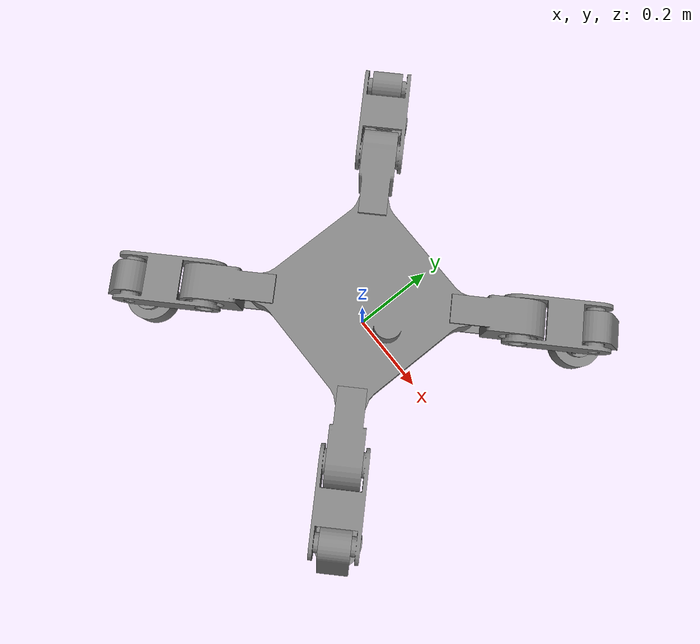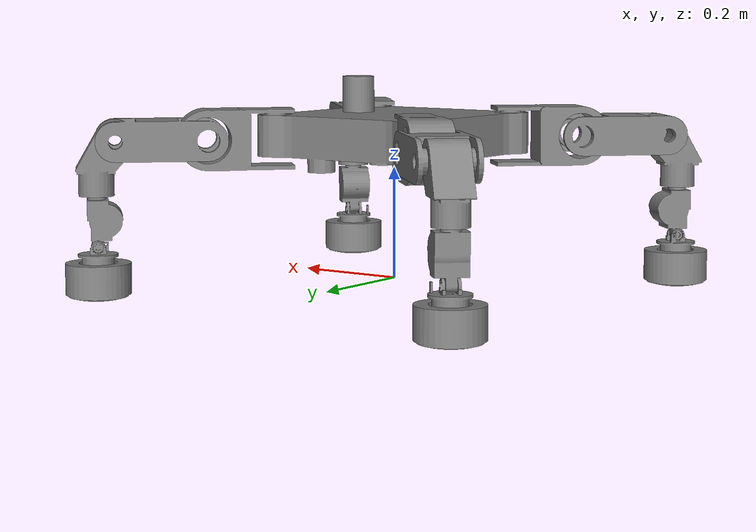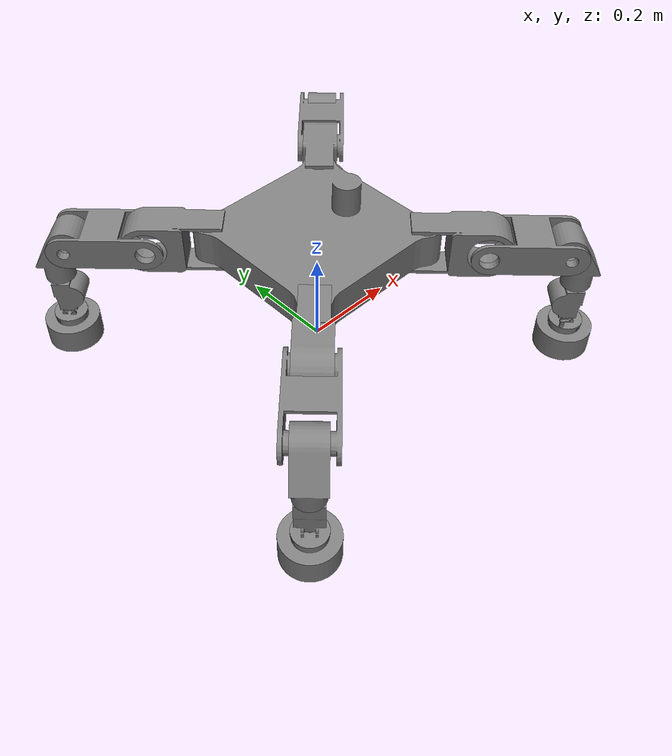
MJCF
<?xml version="1.0"?>
<mujoco model="spider_SLDASM_2m6d">
  <compiler angle="radian" coordinate="local"/>
  <option timestep="0.002" gravity="0 0 -9.81"/>

  <asset>
    <!-- Meshes referenced in URDF -->
    <mesh name="base_link" file="../meshes/base_link.STL"/>
    <mesh name="FR_hip" file="../meshes/FR_hip.STL"/>
    <mesh name="FR_thigh" file="../meshes/FR_thigh.STL"/>
    <mesh name="FR_calf" file="../meshes/FR_calf.STL"/>
    <mesh name="FR_steer" file="../meshes/FR_steer.STL"/>
    <mesh name="FR_trans" file="../meshes/FR_trans.STL"/>
    <mesh name="FR_wheel" file="../meshes/FR_wheel.STL"/>
    <mesh name="FL_hip" file="../meshes/FL_hip.STL"/>
    <mesh name="FL_thigh" file="../meshes/FL_thigh.STL"/>
    <mesh name="FL_calf" file="../meshes/FL_calf.STL"/>
    <mesh name="FL_steer" file="../meshes/FL_steer.STL"/>
    <mesh name="FL_trans" file="../meshes/FL_trans.STL"/>
    <mesh name="FL_wheel" file="../meshes/FL_wheel.STL"/>
    <mesh name="RL_hip" file="../meshes/RL_hip.STL"/>
    <mesh name="RL_thigh" file="../meshes/RL_thigh.STL"/>
    <mesh name="RL_calf" file="../meshes/RL_calf.STL"/>
    <mesh name="RL_steer" file="../meshes/RL_steer.STL"/>
    <mesh name="RL_trans" file="../meshes/RL_trans.STL"/>
    <mesh name="RL_wheel" file="../meshes/RL_wheel.STL"/>
    <mesh name="RR_hip" file="../meshes/RR_hip.STL"/>
    <mesh name="RR_thigh" file="../meshes/RR_thigh.STL"/>
    <mesh name="RR_calf" file="../meshes/RR_calf.STL"/>
    <mesh name="RR_steer" file="../meshes/RR_steer.STL"/>
    <mesh name="RR_trans" file="../meshes/RR_trans.STL"/>
    <mesh name="RR_wheel" file="../meshes/RR_wheel.STL"/>
  </asset>

  <default>
    <joint armature="0" damping="0.1" stiffness="0"/>
    <geom contype="1" conaffinity="1" friction="0.7 .1 .1" density="1000"/>
  </default>

  <worldbody>
  <body name="base_link" pos="0 0 0.26" euler="0 0 0">
    <joint name="root" type="free" />
    <inertial pos="0. 0 0." mass="7.61" diaginertia="0.067729 0.0725 0.12513"/>
    <geom type="mesh" mesh="base_link" name="geom_base_link"/>
    <body name="FR_hip" pos="0.15 -0.15 -0.00525" euler="0 0 -0.7854">
      <inertial pos="0.082474 0 0.000806" mass="1.9015" diaginertia="0.00332 0.0066457 0.004961"/>
      <joint name="FR_hip_joint_rev" type="hinge" axis="0 0 1" range="-1.1345 1.1345"/>
      <geom type="mesh" mesh="FR_hip" name="geom_FR_hip"/>
      <body name="FR_thigh" pos="0.122 -0.0005 0" euler="0 0 0">
        <inertial pos="0.084796 0 0.004794" mass="0.6009" diaginertia="0.0013857 0.0023339 0.0031649"/>
        <joint name="FR_thigh_joint_rev" type="hinge" axis="0 1 0" range="-1.0472 1.5708"/>
        <geom type="mesh" mesh="FR_thigh" name="geom_FR_thigh"/>
        <body name="FR_calf" pos="0.16 0 0" euler="0 0 0">
          <inertial pos="0.020656 0 -0.035012" mass="0.95" diaginertia="0.0014545 0.0017157 0.00086925"/>
          <joint name="FR_calf_joint_rev" type="hinge" axis="0 1 0" range="-1.5707963268 1.0471975512"/>
          <geom type="mesh" mesh="FR_calf" name="geom_FR_calf"/>
          <body name="FR_steer" pos="0.033 0 -0.097" euler="0 0 0">
            <inertial pos="-0.010789 0 -0.038549" mass="0.4937" diaginertia="0.00032831 0.00032683 0.00023698"/>
            <geom type="mesh" mesh="FR_steer" name="geom_FR_steer"/>
            <body name="FR_trans" pos="-0.00099998 0 -0.09" euler="0 0 0">
              <inertial pos="-4.1e-05 -8.8e-05 -0.045108" mass="0.4204" diaginertia="0.00030185 0.00030059 0.00020305"/>
              <geom type="mesh" mesh="FR_trans" name="geom_FR_trans"/>
              <body name="FR_wheel" pos="0 0 -0.083" euler="0 0 0">
                <inertial pos="0 0 0.022661" mass="0.536" diaginertia="0.00073807 0.00073807 0.0011063"/>
                <geom type="mesh" mesh="FR_wheel" name="geom_FR_wheel"/>
              </body>
            </body>
          </body>
        </body>
      </body>
    </body>
    <body name="FL_hip" pos="0.15 0.15 -0.00525" euler="0 0 0.7854">
      <inertial pos="0.082474 0 0.000806" mass="1.9015" diaginertia="0.00332 0.0066457 0.004961"/>
      <joint name="FL_hip_joint_rev" type="hinge" axis="0 0 1" range="-1.1345 1.1345"/>
      <geom type="mesh" mesh="FL_hip" name="geom_FL_hip"/>
      <body name="FL_thigh" pos="0.122 -0.0005 0" euler="0 0 0">
        <inertial pos="0.084796 0 0.004794" mass="0.6009" diaginertia="0.0013857 0.0023339 0.0031649"/>
        <joint name="FL_thigh_joint_rev" type="hinge" axis="0 1 0" range="-1.0472 1.5708"/>
        <geom type="mesh" mesh="FL_thigh" name="geom_FL_thigh"/>
        <body name="FL_calf" pos="0.16 0 0" euler="0 0 0">
          <inertial pos="0.020656 0 -0.035012" mass="0.95" diaginertia="0.0014545 0.0017157 0.00086925"/>
          <joint name="FL_calf_joint_rev" type="hinge" axis="0 1 0" range="-1.5707963267949 1.0471975512"/>
          <geom type="mesh" mesh="FL_calf" name="geom_FL_calf"/>
          <body name="FL_steer" pos="0.033 0 -0.097" euler="0 0 0">
            <inertial pos="-0.010789 0 -0.038549" mass="0.4937" diaginertia="0.00032831 0.00032683 0.00023698"/>
            <geom type="mesh" mesh="FL_steer" name="geom_FL_steer"/>
            <body name="FL_trans" pos="-0.00099998 0 -0.09" euler="0 0 0">
              <inertial pos="-4.1e-05 -8.8e-05 -0.045108" mass="0.4204" diaginertia="0.00030185 0.00030059 0.00020305"/>
              <geom type="mesh" mesh="FL_trans" name="geom_FL_trans"/>
              <body name="FL_wheel" pos="0 0 -0.083" euler="0 0 0">
                <inertial pos="0 0 0.022661" mass="0.536" diaginertia="0.00073807 0.00073807 0.0011063"/>
                <geom type="mesh" mesh="FL_wheel" name="geom_FL_wheel"/>
              </body>
            </body>
          </body>
        </body>
      </body>
    </body>
    <body name="RL_hip" pos="-0.15 0.15 -0.00525" euler="0 0 2.3562">
      <inertial pos="0.082474 0 0.000806" mass="1.9015" diaginertia="0.00332 0.0066457 0.004961"/>
      <joint name="RL_hip_joint_rev" type="hinge" axis="0 0 1" range="-1.1345 1.1345"/>
      <geom type="mesh" mesh="RL_hip" name="geom_RL_hip"/>
      <body name="RL_thigh" pos="0.122 -0.0005 0" euler="0 0 0">
        <inertial pos="0.084796 0 0.004794" mass="0.6009" diaginertia="0.0013857 0.0023339 0.0031649"/>
        <joint name="RL_thigh_joint_rev" type="hinge" axis="0 1 0" range="-1.0472 1.5708"/>
        <geom type="mesh" mesh="RL_thigh" name="geom_RL_thigh"/>
        <body name="RL_calf" pos="0.16 0 0" euler="0 0 0">
          <inertial pos="0.020656 0 -0.035012" mass="0.95" diaginertia="0.0014545 0.0017157 0.00086925"/>
          <joint name="RL_calf_joint_rev" type="hinge" axis="0 1 0" range="-1.5707963268 1.0471975512"/>
          <geom type="mesh" mesh="RL_calf" name="geom_RL_calf"/>
          <body name="RL_steer" pos="0.033 0 -0.097" euler="0 0 0">
            <inertial pos="-0.010789 0 -0.038549" mass="0.4937" diaginertia="0.00032831 0.00032683 0.00023698"/>
            <geom type="mesh" mesh="RL_steer" name="geom_RL_steer"/>
            <body name="RL_trans" pos="-0.00099998 0 -0.09" euler="0 0 0">
              <inertial pos="-4.1e-05 -8.8e-05 -0.045108" mass="0.4204" diaginertia="0.00030185 0.00030059 0.00020305"/>
              <geom type="mesh" mesh="RL_trans" name="geom_RL_trans"/>
              <body name="RL_wheel" pos="0 0 -0.083" euler="0 0 0">
                <inertial pos="0 0 0.022661" mass="0.536" diaginertia="0.00073807 0.00073807 0.0011063"/>
                <geom type="mesh" mesh="RL_wheel" name="geom_RL_wheel"/>
              </body>
            </body>
          </body>
        </body>
      </body>
    </body>
    <body name="RR_hip" pos="-0.15 -0.15 -0.00525" euler="0 0 -2.3562">
      <inertial pos="0.082474 0 0.000806" mass="1.9015" diaginertia="0.00332 0.0066457 0.004961"/>
      <joint name="RR_hip_joint_rev" type="hinge" axis="0 0 1" range="-1.1345 1.1345"/>
      <geom type="mesh" mesh="RR_hip" name="geom_RR_hip"/>
      <body name="RR_thigh" pos="0.122 -0.0005 0" euler="0 0 0">
        <inertial pos="0.084796 0 0.004794" mass="0.6009" diaginertia="0.0013857 0.0023339 0.0031649"/>
        <joint name="RR_thigh_joint_rev" type="hinge" axis="0 1 0" range="-1.0472 1.5708"/>
        <geom type="mesh" mesh="RR_thigh" name="geom_RR_thigh"/>
        <body name="RR_calf" pos="0.16 0 0" euler="0 0 0">
          <inertial pos="0.020656 0 -0.035012" mass="0.95" diaginertia="0.0014545 0.0017157 0.00086925"/>
          <joint name="RR_calf_joint_rev" type="hinge" axis="0 1 0" range="-1.5707963268 1.0471975512"/>
          <geom type="mesh" mesh="RR_calf" name="geom_RR_calf"/>
          <body name="RR_steer" pos="0.033 0 -0.097" euler="0 0 0">
            <inertial pos="-0.010789 0 -0.038549" mass="0.4937" diaginertia="0.00032831 0.00032683 0.00023698"/>
            <geom type="mesh" mesh="RR_steer" name="geom_RR_steer"/>
            <body name="RR_trans" pos="-0.00099998 0 -0.09" euler="0 0 0">
              <inertial pos="-4.1e-05 -8.8e-05 -0.045108" mass="0.4204" diaginertia="0.00030185 0.00030059 0.00020305"/>
              <geom type="mesh" mesh="RR_trans" name="geom_RR_trans"/>
              <body name="RR_wheel" pos="0 0 -0.083" euler="0 0 0">
                <inertial pos="0 0 0.022661" mass="0.536" diaginertia="0.00073807 0.00073807 0.0011063"/>
                <geom type="mesh" mesh="RR_wheel" name="geom_RR_wheel"/>
              </body>
            </body>
          </body>
        </body>
      </body>
    </body>
  </body>
  </worldbody>

  <actuator>
    <motor name="m_FR_hip_joint_rev" joint="FR_hip_joint_rev" gear="1"/>
    <motor name="m_FR_thigh_joint_rev" joint="FR_thigh_joint_rev" gear="1"/>
    <motor name="m_FR_calf_joint_rev" joint="FR_calf_joint_rev" gear="1"/>

    <motor name="m_FL_hip_joint_rev" joint="FL_hip_joint_rev" gear="1"/>
    <motor name="m_FL_thigh_joint_rev" joint="FL_thigh_joint_rev" gear="1"/>
    <motor name="m_FL_calf_joint_rev" joint="FL_calf_joint_rev" gear="1"/>

    <motor name="m_RL_hip_joint_rev" joint="RL_hip_joint_rev" gear="1"/>
    <motor name="m_RL_thigh_joint_rev" joint="RL_thigh_joint_rev" gear="1"/>
    <motor name="m_RL_calf_joint_rev" joint="RL_calf_joint_rev" gear="1"/>

    <motor name="m_RR_hip_joint_rev" joint="RR_hip_joint_rev" gear="1"/>
    <motor name="m_RR_thigh_joint_rev" joint="RR_thigh_joint_rev" gear="1"/>
    <motor name="m_RR_calf_joint_rev" joint="RR_calf_joint_rev" gear="1"/>

  </actuator>
</mujoco>
